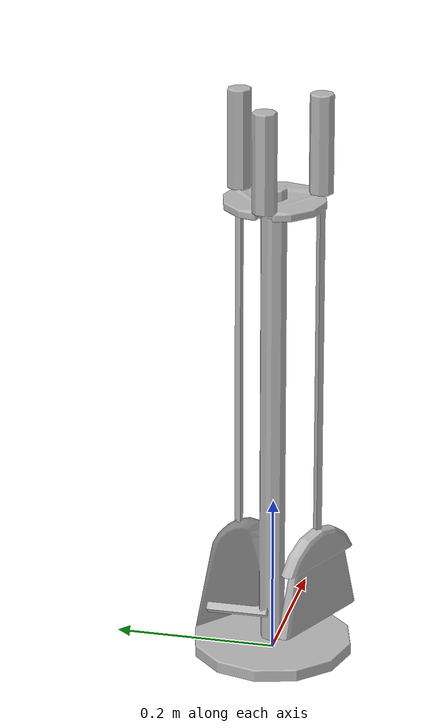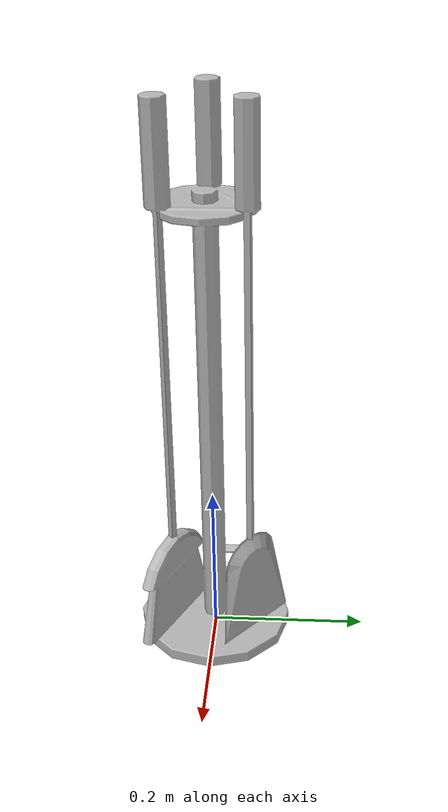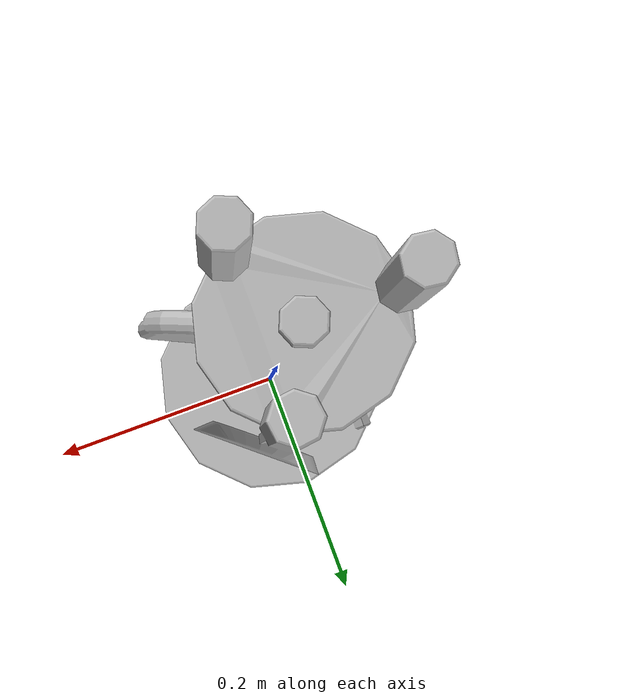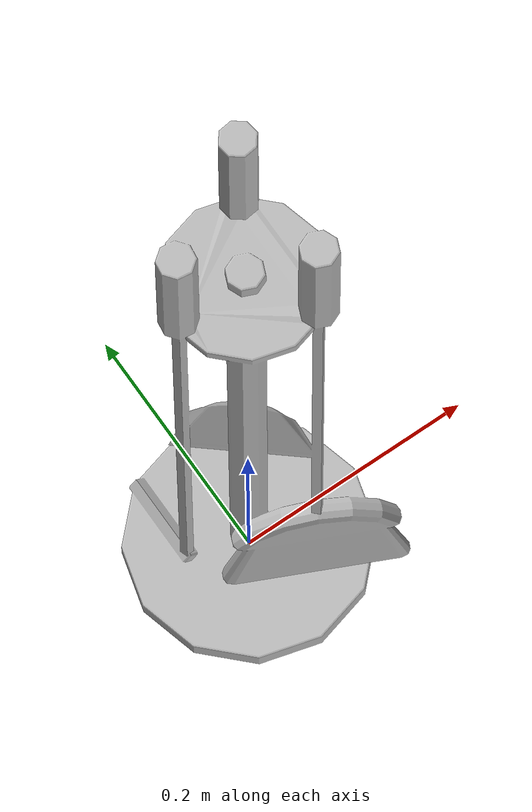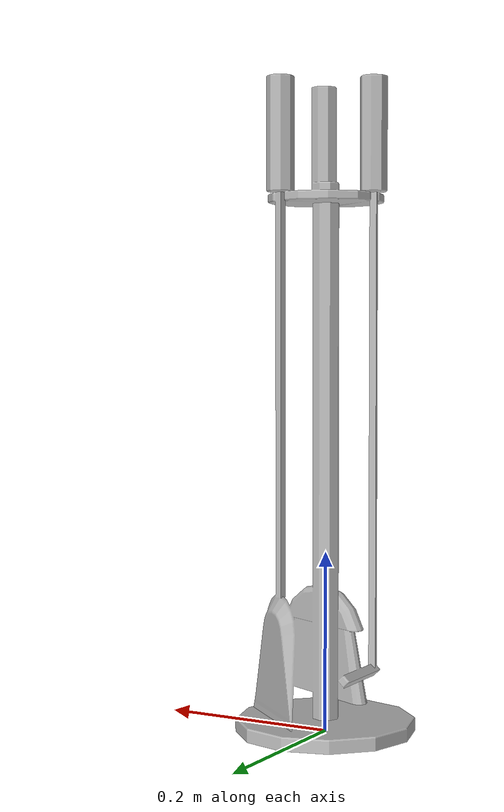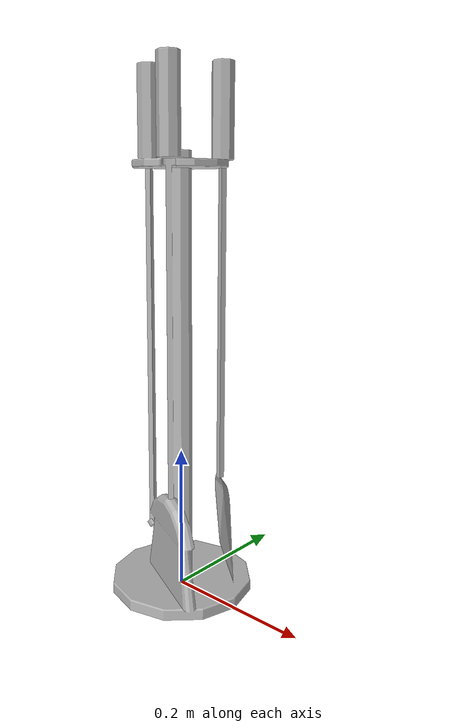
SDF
<?xml version='1.0'?>
<sdf version='1.4'>
  <model name='s__1309'>
    <pose>0 0 0 0 0 0</pose>
    <static>true</static>
    <link name='link'>
      <collision name='collision'>
        <pose>0 0 0 0 0 0</pose>
        <geometry>
          <box>
            <size>0.2 0.2 2</size>
          </box>
        </geometry>
      </collision>
      <visual name='visual'>
        <pose>0 0 0 0 0 0</pose>
        <geometry>
          <mesh><uri>model://s__1309/s__1309.dae</uri></mesh>
        </geometry>
      </visual>
    </link>
  </model>
</sdf>
